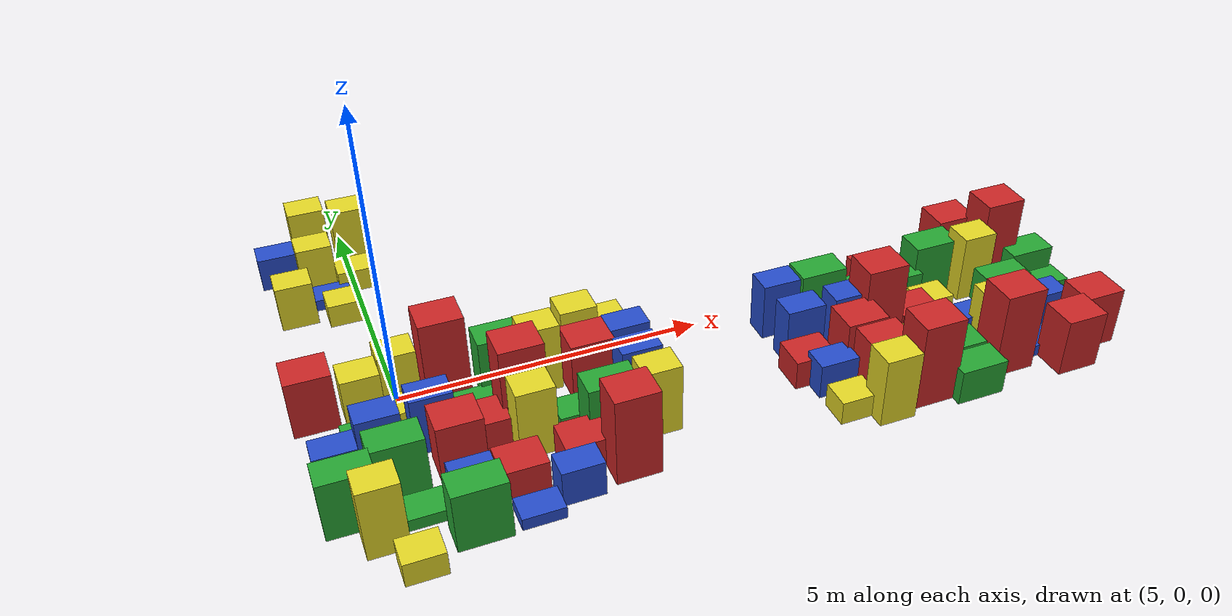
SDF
<sdf version="1.6">
 <world name="default">
  <model name="baggage_A_0.5_clone_0">
   <pose>6.26543 -2.46376 0.249591 0 -0 0</pose>
   <static>1</static>
   <link name="baggage_A_0.5::link">
    <collision name="collision"><geometry><box><size>0.7 0.6 0.5</size></box></geometry></collision>
    <visual name="visual">
     <geometry><box><size>0.7 0.6 0.5</size></box></geometry>
     <material>
      <script><uri>file://media/materials/scripts/gazebo.material</uri><name>Gazebo/Red</name></script>
     </material>
    </visual>
   </link>
  </model>
  <model name="baggage_A_0.5_clone_10">
   <pose>7.2367 -2.3284 0.24962 0 -0 0</pose>
   <static>1</static>
   <link name="baggage_A_0.5::link">
    <collision name="collision"><geometry><box><size>0.7 0.6 0.5</size></box></geometry></collision>
    <visual name="visual">
     <geometry><box><size>0.7 0.6 0.5</size></box></geometry>
     <material>
      <script><uri>file://media/materials/scripts/gazebo.material</uri><name>Gazebo/Red</name></script>
     </material>
    </visual>
   </link>
  </model>
  <model name="baggage_A_0.5_clone_19">
   <pose>6.0358 -1.37193 0.249929 0 -0 0</pose>
   <static>1</static>
   <link name="baggage_A_0.5::link">
    <collision name="collision"><geometry><box><size>0.7 0.6 0.5</size></box></geometry></collision>
    <visual name="visual">
     <geometry><box><size>0.7 0.6 0.5</size></box></geometry>
     <material>
      <script><uri>file://media/materials/scripts/gazebo.material</uri><name>Gazebo/Red</name></script>
     </material>
    </visual>
   </link>
  </model>
  <model name="baggage_A_0.5_clone_33">
   <pose>11.1414 -1.86136 0.249759 0 -0 0</pose>
   <static>1</static>
   <link name="baggage_A_0.5::link">
    <collision name="collision"><geometry><box><size>0.7 0.6 0.5</size></box></geometry></collision>
    <visual name="visual">
     <geometry><box><size>0.7 0.6 0.5</size></box></geometry>
     <material>
      <script><uri>file://media/materials/scripts/gazebo.material</uri><name>Gazebo/Red</name></script>
     </material>
    </visual>
   </link>
  </model>
  <model name="baggage_A_0.5_clone_40">
   <pose>13.3126 -0.130646 0.249646 0 -0 0</pose>
   <static>1</static>
   <link name="baggage_A_0.5::link">
    <collision name="collision"><geometry><box><size>0.7 0.6 0.5</size></box></geometry></collision>
    <visual name="visual">
     <geometry><box><size>0.7 0.6 0.5</size></box></geometry>
     <material>
      <script><uri>file://media/materials/scripts/gazebo.material</uri><name>Gazebo/Red</name></script>
     </material>
    </visual>
   </link>
  </model>
  <model name="baggage_A_0.5_clone_44">
   <pose>13.2972 -1.43388 0.249622 0 -0 0</pose>
   <static>1</static>
   <link name="baggage_A_0.5::link">
    <collision name="collision"><geometry><box><size>0.7 0.6 0.5</size></box></geometry></collision>
    <visual name="visual">
     <geometry><box><size>0.7 0.6 0.5</size></box></geometry>
     <material>
      <script><uri>file://media/materials/scripts/gazebo.material</uri><name>Gazebo/Red</name></script>
     </material>
    </visual>
   </link>
  </model>
  <model name="baggage_A_1.0_clone_3">
   <pose>15.8008 -2.74708 0.499669 0 -0 0</pose>
   <static>1</static>
   <link name="baggage_A_1.0::link">
    <collision name="collision"><geometry><box><size>0.7 0.6 1</size></box></geometry></collision>
    <visual name="visual">
     <geometry><box><size>0.7 0.6 1</size></box></geometry>
     <material>
      <script><uri>file://media/materials/scripts/gazebo.material</uri><name>Gazebo/Red</name></script>
     </material>
    </visual>
   </link>
  </model>
  <model name="baggage_A_1.0_clone_6">
   <pose>5.54857 -1.7938 0.500326 0 -0 0</pose>
   <static>1</static>
   <link name="baggage_A_1.0::link">
    <collision name="collision"><geometry><box><size>0.7 0.6 1</size></box></geometry></collision>
    <visual name="visual">
     <geometry><box><size>0.7 0.6 1</size></box></geometry>
     <material>
      <script><uri>file://media/materials/scripts/gazebo.material</uri><name>Gazebo/Red</name></script>
     </material>
    </visual>
   </link>
  </model>
  <model name="baggage_A_1.0_clone_7">
   <pose>12.0629 -2.55244 0.500417 0 -0 0</pose>
   <static>1</static>
   <link name="baggage_A_1.0::link">
    <collision name="collision"><geometry><box><size>0.7 0.6 1</size></box></geometry></collision>
    <visual name="visual">
     <geometry><box><size>0.7 0.6 1</size></box></geometry>
     <material>
      <script><uri>file://media/materials/scripts/gazebo.material</uri><name>Gazebo/Red</name></script>
     </material>
    </visual>
   </link>
  </model>
  <model name="baggage_A_1.0_clone_9">
   <pose>14.8922 0.079418 0.500357 0 -0 0</pose>
   <static>1</static>
   <link name="baggage_A_1.0::link">
    <collision name="collision"><geometry><box><size>0.7 0.6 1</size></box></geometry></collision>
    <visual name="visual">
     <geometry><box><size>0.7 0.6 1</size></box></geometry>
     <material>
      <script><uri>file://media/materials/scripts/gazebo.material</uri><name>Gazebo/Red</name></script>
     </material>
    </visual>
   </link>
  </model>
  <model name="baggage_A_1.0_clone_13">
   <pose>7.86668 -0.77323 0.500079 0 -0 0</pose>
   <static>1</static>
   <link name="baggage_A_1.0::link">
    <collision name="collision"><geometry><box><size>0.7 0.6 1</size></box></geometry></collision>
    <visual name="visual">
     <geometry><box><size>0.7 0.6 1</size></box></geometry>
     <material>
      <script><uri>file://media/materials/scripts/gazebo.material</uri><name>Gazebo/Red</name></script>
     </material>
    </visual>
   </link>
  </model>
  <model name="baggage_A_1.0_clone_16">
   <pose>11.9799 -1.9132 0.500256 0 -0 0</pose>
   <static>1</static>
   <link name="baggage_A_1.0::link">
    <collision name="collision"><geometry><box><size>0.7 0.6 1</size></box></geometry></collision>
    <visual name="visual">
     <geometry><box><size>0.7 0.6 1</size></box></geometry>
     <material>
      <script><uri>file://media/materials/scripts/gazebo.material</uri><name>Gazebo/Red</name></script>
     </material>
    </visual>
   </link>
  </model>
  <model name="baggage_A_1.0_clone_25">
   <pose>3.75392 -0.022818 0.500376 0 -0 0</pose>
   <static>1</static>
   <link name="baggage_A_1.0::link">
    <collision name="collision"><geometry><box><size>0.7 0.6 1</size></box></geometry></collision>
    <visual name="visual">
     <geometry><box><size>0.7 0.6 1</size></box></geometry>
     <material>
      <script><uri>file://media/materials/scripts/gazebo.material</uri><name>Gazebo/Red</name></script>
     </material>
    </visual>
   </link>
  </model>
  <model name="baggage_A_1.0_clone_35">
   <pose>15.1485 -3.14639 0.500323 0 -0 0</pose>
   <static>1</static>
   <link name="baggage_A_1.0::link">
    <collision name="collision"><geometry><box><size>0.7 0.6 1</size></box></geometry></collision>
    <visual name="visual">
     <geometry><box><size>0.7 0.6 1</size></box></geometry>
     <material>
      <script><uri>file://media/materials/scripts/gazebo.material</uri><name>Gazebo/Red</name></script>
     </material>
    </visual>
   </link>
  </model>
  <model name="baggage_A_1.5_clone_6">
   <pose>14.1781 -2.79768 0.749922 0 -0 0</pose>
   <static>1</static>
   <link name="baggage_A_1.5::link">
    <collision name="collision"><geometry><box><size>0.7 0.6 1.5</size></box></geometry></collision>
    <visual name="visual">
     <geometry><box><size>0.7 0.6 1.5</size></box></geometry>
     <material>
      <script><uri>file://media/materials/scripts/gazebo.material</uri><name>Gazebo/Red</name></script>
     </material>
    </visual>
   </link>
  </model>
  <model name="baggage_A_1.5_clone_9">
   <pose>12.6198 -2.9794 0.7496 0 -0 0</pose>
   <static>1</static>
   <link name="baggage_A_1.5::link">
    <collision name="collision"><geometry><box><size>0.7 0.6 1.5</size></box></geometry></collision>
    <visual name="visual">
     <geometry><box><size>0.7 0.6 1.5</size></box></geometry>
     <material>
      <script><uri>file://media/materials/scripts/gazebo.material</uri><name>Gazebo/Red</name></script>
     </material>
    </visual>
   </link>
  </model>
  <model name="baggage_A_1.5_clone_10">
   <pose>7.83064 -2.76424 0.749633 0 -0 0</pose>
   <static>1</static>
   <link name="baggage_A_1.5::link">
    <collision name="collision"><geometry><box><size>0.7 0.6 1.5</size></box></geometry></collision>
    <visual name="visual">
     <geometry><box><size>0.7 0.6 1.5</size></box></geometry>
     <material>
      <script><uri>file://media/materials/scripts/gazebo.material</uri><name>Gazebo/Red</name></script>
     </material>
    </visual>
   </link>
  </model>
  <model name="baggage_A_1.5_clone_11">
   <pose>5.76849 -0.074128 0.749916 0 -0 0</pose>
   <static>1</static>
   <link name="baggage_A_1.5::link">
    <collision name="collision"><geometry><box><size>0.7 0.6 1.5</size></box></geometry></collision>
    <visual name="visual">
     <geometry><box><size>0.7 0.6 1.5</size></box></geometry>
     <material>
      <script><uri>file://media/materials/scripts/gazebo.material</uri><name>Gazebo/Red</name></script>
     </material>
    </visual>
   </link>
  </model>
  <model name="baggage_A_1.5_clone_13">
   <pose>15.4323 -0.470897 0.749757 0 -0 0</pose>
   <static>1</static>
   <link name="baggage_A_1.5::link">
    <collision name="collision"><geometry><box><size>0.7 0.6 1.5</size></box></geometry></collision>
    <visual name="visual">
     <geometry><box><size>0.7 0.6 1.5</size></box></geometry>
     <material>
      <script><uri>file://media/materials/scripts/gazebo.material</uri><name>Gazebo/Red</name></script>
     </material>
    </visual>
   </link>
  </model>
  <model name="baggage_A_1.5_clone_33">
   <pose>12.5796 -1.41703 0.75003 0 -0 0</pose>
   <static>1</static>
   <link name="baggage_A_1.5::link">
    <collision name="collision"><geometry><box><size>0.7 0.6 1.5</size></box></geometry></collision>
    <visual name="visual">
     <geometry><box><size>0.7 0.6 1.5</size></box></geometry>
     <material>
      <script><uri>file://media/materials/scripts/gazebo.material</uri><name>Gazebo/Red</name></script>
     </material>
    </visual>
   </link>
  </model>
  <model name="baggage_A_1.5_clone_40">
   <pose>6.6746 -1.12238 0.749543 0 -0 0</pose>
   <static>1</static>
   <link name="baggage_A_1.5::link">
    <collision name="collision"><geometry><box><size>0.7 0.6 1.5</size></box></geometry></collision>
    <visual name="visual">
     <geometry><box><size>0.7 0.6 1.5</size></box></geometry>
     <material>
      <script><uri>file://media/materials/scripts/gazebo.material</uri><name>Gazebo/Red</name></script>
     </material>
    </visual>
   </link>
  </model>
  <model name="baggage_B_0.2_clone_4">
   <pose>14.1904 -1.6285 0.099919 0 -0 0</pose>
   <static>1</static>
   <link name="baggage_B_0.2::link">
    <collision name="collision"><geometry><box><size>0.65 0.45 0.2</size></box></geometry></collision>
    <visual name="visual">
     <geometry><box><size>0.65 0.45 0.2</size></box></geometry>
     <material>
      <script><uri>file://media/materials/scripts/gazebo.material</uri><name>Gazebo/Blue</name></script>
     </material>
    </visual>
   </link>
  </model>
  <model name="baggage_B_0.2_clone_5">
   <pose>14.8374 -2.67746 0.100371 0 -0 0</pose>
   <static>1</static>
   <link name="baggage_B_0.2::link">
    <collision name="collision"><geometry><box><size>0.65 0.45 0.2</size></box></geometry></collision>
    <visual name="visual">
     <geometry><box><size>0.65 0.45 0.2</size></box></geometry>
     <material>
      <script><uri>file://media/materials/scripts/gazebo.material</uri><name>Gazebo/Blue</name></script>
     </material>
    </visual>
   </link>
  </model>
  <model name="baggage_B_0.2_clone_12">
   <pose>6.30994 -3.16878 0.099848 0 -0 0</pose>
   <static>1</static>
   <link name="baggage_B_0.2::link">
    <collision name="collision"><geometry><box><size>0.65 0.45 0.2</size></box></geometry></collision>
    <visual name="visual">
     <geometry><box><size>0.65 0.45 0.2</size></box></geometry>
     <material>
      <script><uri>file://media/materials/scripts/gazebo.material</uri><name>Gazebo/Blue</name></script>
     </material>
    </visual>
   </link>
  </model>
  <model name="baggage_B_0.2_clone_21">
   <pose>4.55676 3.02236 0.099808 0 -0 0</pose>
   <static>1</static>
   <link name="baggage_B_0.2::link">
    <collision name="collision"><geometry><box><size>0.65 0.45 0.2</size></box></geometry></collision>
    <visual name="visual">
     <geometry><box><size>0.65 0.45 0.2</size></box></geometry>
     <material>
      <script><uri>file://media/materials/scripts/gazebo.material</uri><name>Gazebo/Blue</name></script>
     </material>
    </visual>
   </link>
  </model>
  <model name="baggage_B_0.6_clone_7">
   <pose>3.8292 3.98197 0.299785 0 -0 0</pose>
   <static>1</static>
   <link name="baggage_B_0.6::link">
    <collision name="collision"><geometry><box><size>0.65 0.45 0.6</size></box></geometry></collision>
    <visual name="visual">
     <geometry><box><size>0.65 0.45 0.6</size></box></geometry>
     <material>
      <script><uri>file://media/materials/scripts/gazebo.material</uri><name>Gazebo/Blue</name></script>
     </material>
    </visual>
   </link>
  </model>
  <model name="baggage_B_0.6_clone_21">
   <pose>6.9676 -2.94811 0.300016 0 -0 0</pose>
   <static>1</static>
   <link name="baggage_B_0.6::link">
    <collision name="collision"><geometry><box><size>0.65 0.45 0.6</size></box></geometry></collision>
    <visual name="visual">
     <geometry><box><size>0.65 0.45 0.6</size></box></geometry>
     <material>
      <script><uri>file://media/materials/scripts/gazebo.material</uri><name>Gazebo/Blue</name></script>
     </material>
    </visual>
   </link>
  </model>
  <model name="baggage_B_0.6_clone_22">
   <pose>15.4346 -2.02199 0.300057 0 -0 0</pose>
   <static>1</static>
   <link name="baggage_B_0.6::link">
    <collision name="collision"><geometry><box><size>0.65 0.45 0.6</size></box></geometry></collision>
    <visual name="visual">
     <geometry><box><size>0.65 0.45 0.6</size></box></geometry>
     <material>
      <script><uri>file://media/materials/scripts/gazebo.material</uri><name>Gazebo/Blue</name></script>
     </material>
    </visual>
   </link>
  </model>
  <model name="baggage_B_0.6_clone_27">
   <pose>11.3573 -2.26727 0.300325 0 -0 0</pose>
   <static>1</static>
   <link name="baggage_B_0.6::link">
    <collision name="collision"><geometry><box><size>0.65 0.45 0.6</size></box></geometry></collision>
    <visual name="visual">
     <geometry><box><size>0.65 0.45 0.6</size></box></geometry>
     <material>
      <script><uri>file://media/materials/scripts/gazebo.material</uri><name>Gazebo/Blue</name></script>
     </material>
    </visual>
   </link>
  </model>
  <model name="baggage_B_0.6_clone_32">
   <pose>5.55622 -2.53883 0.299956 0 -0 0</pose>
   <static>1</static>
   <link name="baggage_B_0.6::link">
    <collision name="collision"><geometry><box><size>0.65 0.45 0.6</size></box></geometry></collision>
    <visual name="visual">
     <geometry><box><size>0.65 0.45 0.6</size></box></geometry>
     <material>
      <script><uri>file://media/materials/scripts/gazebo.material</uri><name>Gazebo/Blue</name></script>
     </material>
    </visual>
   </link>
  </model>
  <model name="baggage_B_0.6_clone_33">
   <pose>3.86494 -1.36281 0.299703 0 -0 0</pose>
   <static>1</static>
   <link name="baggage_B_0.6::link">
    <collision name="collision"><geometry><box><size>0.65 0.45 0.6</size></box></geometry></collision>
    <visual name="visual">
     <geometry><box><size>0.65 0.45 0.6</size></box></geometry>
     <material>
      <script><uri>file://media/materials/scripts/gazebo.material</uri><name>Gazebo/Blue</name></script>
     </material>
    </visual>
   </link>
  </model>
  <model name="baggage_B_0.6_clone_41">
   <pose>14.7447 -0.224482 0.299907 0 -0 0</pose>
   <static>1</static>
   <link name="baggage_B_0.6::link">
    <collision name="collision"><geometry><box><size>0.65 0.45 0.6</size></box></geometry></collision>
    <visual name="visual">
     <geometry><box><size>0.65 0.45 0.6</size></box></geometry>
     <material>
      <script><uri>file://media/materials/scripts/gazebo.material</uri><name>Gazebo/Blue</name></script>
     </material>
    </visual>
   </link>
  </model>
  <model name="baggage_B_1.0_clone_0">
   <pose>11.2512 -1.33279 0.499893 0 -0 0</pose>
   <static>1</static>
   <link name="baggage_B_1.0::link">
    <collision name="collision"><geometry><box><size>0.65 0.45 1</size></box></geometry></collision>
    <visual name="visual">
     <geometry><box><size>0.65 0.45 1</size></box></geometry>
     <material>
      <script><uri>file://media/materials/scripts/gazebo.material</uri><name>Gazebo/Blue</name></script>
     </material>
    </visual>
   </link>
  </model>
  <model name="baggage_B_1.0_clone_15">
   <pose>4.51567 -1.31017 0.499507 0 -0 0</pose>
   <static>1</static>
   <link name="baggage_B_1.0::link">
    <collision name="collision"><geometry><box><size>0.65 0.45 1</size></box></geometry></collision>
    <visual name="visual">
     <geometry><box><size>0.65 0.45 1</size></box></geometry>
     <material>
      <script><uri>file://media/materials/scripts/gazebo.material</uri><name>Gazebo/Blue</name></script>
     </material>
    </visual>
   </link>
  </model>
  <model name="baggage_B_1.0_clone_18">
   <pose>11.2098 -0.562731 0.500107 0 -0 0</pose>
   <static>1</static>
   <link name="baggage_B_1.0::link">
    <collision name="collision"><geometry><box><size>0.65 0.45 1</size></box></geometry></collision>
    <visual name="visual">
     <geometry><box><size>0.65 0.45 1</size></box></geometry>
     <material>
      <script><uri>file://media/materials/scripts/gazebo.material</uri><name>Gazebo/Blue</name></script>
     </material>
    </visual>
   </link>
  </model>
  <model name="baggage_B_1.0_clone_33">
   <pose>5.3183 -1.15227 0.499892 0 -0 0</pose>
   <static>1</static>
   <link name="baggage_B_1.0::link">
    <collision name="collision"><geometry><box><size>0.65 0.45 1</size></box></geometry></collision>
    <visual name="visual">
     <geometry><box><size>0.65 0.45 1</size></box></geometry>
     <material>
      <script><uri>file://media/materials/scripts/gazebo.material</uri><name>Gazebo/Blue</name></script>
     </material>
    </visual>
   </link>
  </model>
  <model name="baggage_B_1.0_clone_34">
   <pose>8.53799 -0.674083 0.500363 0 -0 0</pose>
   <static>1</static>
   <link name="baggage_B_1.0::link">
    <collision name="collision"><geometry><box><size>0.65 0.45 1</size></box></geometry></collision>
    <visual name="visual">
     <geometry><box><size>0.65 0.45 1</size></box></geometry>
     <material>
      <script><uri>file://media/materials/scripts/gazebo.material</uri><name>Gazebo/Blue</name></script>
     </material>
    </visual>
   </link>
  </model>
  <model name="baggage_B_1.0_clone_37">
   <pose>12.0967 -1.30499 0.500296 0 -0 0</pose>
   <static>1</static>
   <link name="baggage_B_1.0::link">
    <collision name="collision"><geometry><box><size>0.65 0.45 1</size></box></geometry></collision>
    <visual name="visual">
     <geometry><box><size>0.65 0.45 1</size></box></geometry>
     <material>
      <script><uri>file://media/materials/scripts/gazebo.material</uri><name>Gazebo/Blue</name></script>
     </material>
    </visual>
   </link>
  </model>
  <model name="baggage_B_1.0_clone_44">
   <pose>8.49553 -1.28646 0.499664 0 -0 0</pose>
   <static>1</static>
   <link name="baggage_B_1.0::link">
    <collision name="collision"><geometry><box><size>0.65 0.45 1</size></box></geometry></collision>
    <visual name="visual">
     <geometry><box><size>0.65 0.45 1</size></box></geometry>
     <material>
      <script><uri>file://media/materials/scripts/gazebo.material</uri><name>Gazebo/Blue</name></script>
     </material>
    </visual>
   </link>
  </model>
  <model name="baggage_C_0.4_clone_4">
   <pose>12.8194 -2.02279 0.20014 0 -0 0</pose>
   <static>1</static>
   <link name="baggage_C_0.4::link">
    <collision name="collision"><geometry><box><size>0.6 0.5 0.4</size></box></geometry></collision>
    <visual name="visual">
     <geometry><box><size>0.6 0.5 0.4</size></box></geometry>
     <material>
      <script><uri>file://media/materials/scripts/gazebo.material</uri><name>Gazebo/Yellow</name></script>
     </material>
    </visual>
   </link>
  </model>
  <model name="baggage_C_0.4_clone_19">
   <pose>12.687 -0.817467 0.199788 0 -0 0</pose>
   <static>1</static>
   <link name="baggage_C_0.4::link">
    <collision name="collision"><geometry><box><size>0.6 0.5 0.4</size></box></geometry></collision>
    <visual name="visual">
     <geometry><box><size>0.6 0.5 0.4</size></box></geometry>
     <material>
      <script><uri>file://media/materials/scripts/gazebo.material</uri><name>Gazebo/Yellow</name></script>
     </material>
    </visual>
   </link>
  </model>
  <model name="baggage_C_0.4_clone_26">
   <pose>11.3432 -2.91135 0.200181 0 -0 0</pose>
   <static>1</static>
   <link name="baggage_C_0.4::link">
    <collision name="collision"><geometry><box><size>0.6 0.5 0.4</size></box></geometry></collision>
    <visual name="visual">
     <geometry><box><size>0.6 0.5 0.4</size></box></geometry>
     <material>
      <script><uri>file://media/materials/scripts/gazebo.material</uri><name>Gazebo/Yellow</name></script>
     </material>
    </visual>
   </link>
  </model>
  <model name="baggage_C_0.4_clone_31">
   <pose>13.8104 -1.1755 0.199826 0 -0 0</pose>
   <static>1</static>
   <link name="baggage_C_0.4::link">
    <collision name="collision"><geometry><box><size>0.6 0.5 0.4</size></box></geometry></collision>
    <visual name="visual">
     <geometry><box><size>0.6 0.5 0.4</size></box></geometry>
     <material>
      <script><uri>file://media/materials/scripts/gazebo.material</uri><name>Gazebo/Yellow</name></script>
     </material>
    </visual>
   </link>
  </model>
  <model name="baggage_C_0.4_clone_34">
   <pose>4.59136 -3.50974 0.200428 0 -0 0</pose>
   <static>1</static>
   <link name="baggage_C_0.4::link">
    <collision name="collision"><geometry><box><size>0.6 0.5 0.4</size></box></geometry></collision>
    <visual name="visual">
     <geometry><box><size>0.6 0.5 0.4</size></box></geometry>
     <material>
      <script><uri>file://media/materials/scripts/gazebo.material</uri><name>Gazebo/Yellow</name></script>
     </material>
    </visual>
   </link>
  </model>
  <model name="baggage_C_0.4_clone_43">
   <pose>5.15866 -0.59211 0.199723 0 -0 0</pose>
   <static>1</static>
   <link name="baggage_C_0.4::link">
    <collision name="collision"><geometry><box><size>0.6 0.5 0.4</size></box></geometry></collision>
    <visual name="visual">
     <geometry><box><size>0.6 0.5 0.4</size></box></geometry>
     <material>
      <script><uri>file://media/materials/scripts/gazebo.material</uri><name>Gazebo/Yellow</name></script>
     </material>
    </visual>
   </link>
  </model>
  <model name="baggage_C_0.4_clone_44">
   <pose>5.02547 3.40263 0.199954 0 -0 0</pose>
   <static>1</static>
   <link name="baggage_C_0.4::link">
    <collision name="collision"><geometry><box><size>0.6 0.5 0.4</size></box></geometry></collision>
    <visual name="visual">
     <geometry><box><size>0.6 0.5 0.4</size></box></geometry>
     <material>
      <script><uri>file://media/materials/scripts/gazebo.material</uri><name>Gazebo/Yellow</name></script>
     </material>
    </visual>
   </link>
  </model>
  <model name="baggage_C_0.4_clone_46">
   <pose>4.6947 2.49389 0.200389 0 -0 0</pose>
   <static>1</static>
   <link name="baggage_C_0.4::link">
    <collision name="collision"><geometry><box><size>0.6 0.5 0.4</size></box></geometry></collision>
    <visual name="visual">
     <geometry><box><size>0.6 0.5 0.4</size></box></geometry>
     <material>
      <script><uri>file://media/materials/scripts/gazebo.material</uri><name>Gazebo/Yellow</name></script>
     </material>
    </visual>
   </link>
  </model>
  <model name="baggage_C_0.8_clone_3">
   <pose>14.5319 -1.9921 0.399594 0 -0 0</pose>
   <static>1</static>
   <link name="baggage_C_0.8::link">
    <collision name="collision"><geometry><box><size>0.6 0.5 0.8</size></box></geometry></collision>
    <visual name="visual">
     <geometry><box><size>0.6 0.5 0.8</size></box></geometry>
     <material>
      <script><uri>file://media/materials/scripts/gazebo.material</uri><name>Gazebo/Yellow</name></script>
     </material>
    </visual>
   </link>
  </model>
  <model name="baggage_C_0.8_clone_6">
   <pose>4.43262 3.71279 0.400264 0 -0 0</pose>
   <static>1</static>
   <link name="baggage_C_0.8::link">
    <collision name="collision"><geometry><box><size>0.6 0.5 0.8</size></box></geometry></collision>
    <visual name="visual">
     <geometry><box><size>0.6 0.5 0.8</size></box></geometry>
     <material>
      <script><uri>file://media/materials/scripts/gazebo.material</uri><name>Gazebo/Yellow</name></script>
     </material>
    </visual>
   </link>
  </model>
  <model name="baggage_C_0.8_clone_11">
   <pose>5.09871 0.27381 0.399961 0 -0 0</pose>
   <static>1</static>
   <link name="baggage_C_0.8::link">
    <collision name="collision"><geometry><box><size>0.6 0.5 0.8</size></box></geometry></collision>
    <visual name="visual">
     <geometry><box><size>0.6 0.5 0.8</size></box></geometry>
     <material>
      <script><uri>file://media/materials/scripts/gazebo.material</uri><name>Gazebo/Yellow</name></script>
     </material>
    </visual>
   </link>
  </model>
  <model name="baggage_C_0.8_clone_13">
   <pose>8.38068 -0.123605 0.399764 0 -0 0</pose>
   <static>1</static>
   <link name="baggage_C_0.8::link">
    <collision name="collision"><geometry><box><size>0.6 0.5 0.8</size></box></geometry></collision>
    <visual name="visual">
     <geometry><box><size>0.6 0.5 0.8</size></box></geometry>
     <material>
      <script><uri>file://media/materials/scripts/gazebo.material</uri><name>Gazebo/Yellow</name></script>
     </material>
    </visual>
   </link>
  </model>
  <model name="baggage_C_0.8_clone_47">
   <pose>4.48116 -0.075645 0.399805 0 -0 0</pose>
   <static>1</static>
   <link name="baggage_C_0.8::link">
    <collision name="collision"><geometry><box><size>0.6 0.5 0.8</size></box></geometry></collision>
    <visual name="visual">
     <geometry><box><size>0.6 0.5 0.8</size></box></geometry>
     <material>
      <script><uri>file://media/materials/scripts/gazebo.material</uri><name>Gazebo/Yellow</name></script>
     </material>
    </visual>
   </link>
  </model>
  <model name="baggage_C_0.8_clone_48">
   <pose>3.94324 2.70346 0.39978 0 -0 0</pose>
   <static>1</static>
   <link name="baggage_C_0.8::link">
    <collision name="collision"><geometry><box><size>0.6 0.5 0.8</size></box></geometry></collision>
    <visual name="visual">
     <geometry><box><size>0.6 0.5 0.8</size></box></geometry>
     <material>
      <script><uri>file://media/materials/scripts/gazebo.material</uri><name>Gazebo/Yellow</name></script>
     </material>
    </visual>
   </link>
  </model>
  <model name="baggage_C_1.2_clone_0">
   <pose>7.17335 -0.459526 0.599666 0 -0 0</pose>
   <static>1</static>
   <link name="baggage_C_1.2::link">
    <collision name="collision"><geometry><box><size>0.6 0.5 1.2</size></box></geometry></collision>
    <visual name="visual">
     <geometry><box><size>0.6 0.5 1.2</size></box></geometry>
     <material>
      <script><uri>file://media/materials/scripts/gazebo.material</uri><name>Gazebo/Yellow</name></script>
     </material>
    </visual>
   </link>
  </model>
  <model name="baggage_C_1.2_clone_6">
   <pose>11.8654 -3.16881 0.600203 0 -0 0</pose>
   <static>1</static>
   <link name="baggage_C_1.2::link">
    <collision name="collision"><geometry><box><size>0.6 0.5 1.2</size></box></geometry></collision>
    <visual name="visual">
     <geometry><box><size>0.6 0.5 1.2</size></box></geometry>
     <material>
      <script><uri>file://media/materials/scripts/gazebo.material</uri><name>Gazebo/Yellow</name></script>
     </material>
    </visual>
   </link>
  </model>
  <model name="baggage_C_1.2_clone_16">
   <pose>5.13561 4.05713 0.600318 0 -0 0</pose>
   <static>1</static>
   <link name="baggage_C_1.2::link">
    <collision name="collision"><geometry><box><size>0.6 0.5 1.2</size></box></geometry></collision>
    <visual name="visual">
     <geometry><box><size>0.6 0.5 1.2</size></box></geometry>
     <material>
      <script><uri>file://media/materials/scripts/gazebo.material</uri><name>Gazebo/Yellow</name></script>
     </material>
    </visual>
   </link>
  </model>
  <model name="baggage_C_1.2_clone_19">
   <pose>6.67042 -1.80778 0.600356 0 -0 0</pose>
   <static>1</static>
   <link name="baggage_C_1.2::link">
    <collision name="collision"><geometry><box><size>0.6 0.5 1.2</size></box></geometry></collision>
    <visual name="visual">
     <geometry><box><size>0.6 0.5 1.2</size></box></geometry>
     <material>
      <script><uri>file://media/materials/scripts/gazebo.material</uri><name>Gazebo/Yellow</name></script>
     </material>
    </visual>
   </link>
  </model>
  <model name="baggage_C_1.2_clone_20">
   <pose>4.22856 -2.87264 0.60044 0 -0 0</pose>
   <static>1</static>
   <link name="baggage_C_1.2::link">
    <collision name="collision"><geometry><box><size>0.6 0.5 1.2</size></box></geometry></collision>
    <visual name="visual">
     <geometry><box><size>0.6 0.5 1.2</size></box></geometry>
     <material>
      <script><uri>file://media/materials/scripts/gazebo.material</uri><name>Gazebo/Yellow</name></script>
     </material>
    </visual>
   </link>
  </model>
  <model name="baggage_C_1.2_clone_22">
   <pose>8.5045 -2.07752 0.599613 0 -0 0</pose>
   <static>1</static>
   <link name="baggage_C_1.2::link">
    <collision name="collision"><geometry><box><size>0.6 0.5 1.2</size></box></geometry></collision>
    <visual name="visual">
     <geometry><box><size>0.6 0.5 1.2</size></box></geometry>
     <material>
      <script><uri>file://media/materials/scripts/gazebo.material</uri><name>Gazebo/Yellow</name></script>
     </material>
    </visual>
   </link>
  </model>
  <model name="baggage_C_1.2_clone_31">
   <pose>4.45383 4.25964 0.600219 0 -0 0</pose>
   <static>1</static>
   <link name="baggage_C_1.2::link">
    <collision name="collision"><geometry><box><size>0.6 0.5 1.2</size></box></geometry></collision>
    <visual name="visual">
     <geometry><box><size>0.6 0.5 1.2</size></box></geometry>
     <material>
      <script><uri>file://media/materials/scripts/gazebo.material</uri><name>Gazebo/Yellow</name></script>
     </material>
    </visual>
   </link>
  </model>
  <model name="baggage_C_1.2_clone_37">
   <pose>14.7483 -0.848958 0.599608 0 -0 0</pose>
   <static>1</static>
   <link name="baggage_C_1.2::link">
    <collision name="collision"><geometry><box><size>0.6 0.5 1.2</size></box></geometry></collision>
    <visual name="visual">
     <geometry><box><size>0.6 0.5 1.2</size></box></geometry>
     <material>
      <script><uri>file://media/materials/scripts/gazebo.material</uri><name>Gazebo/Yellow</name></script>
     </material>
    </visual>
   </link>
  </model>
  <model name="baggage_C_1.2_clone_45">
   <pose>7.86157 -0.215089 0.59971 0 -0 0</pose>
   <static>1</static>
   <link name="baggage_C_1.2::link">
    <collision name="collision"><geometry><box><size>0.6 0.5 1.2</size></box></geometry></collision>
    <visual name="visual">
     <geometry><box><size>0.6 0.5 1.2</size></box></geometry>
     <material>
      <script><uri>file://media/materials/scripts/gazebo.material</uri><name>Gazebo/Yellow</name></script>
     </material>
    </visual>
   </link>
  </model>
  <model name="baggage_D_0.2_clone_17">
   <pose>7.52064 -1.39829 0.10043 0 -0 0</pose>
   <static>1</static>
   <link name="baggage_D_0.2::link">
    <collision name="collision"><geometry><box><size>0.8 0.5 0.2</size></box></geometry></collision>
    <visual name="visual">
     <geometry><box><size>0.8 0.5 0.2</size></box></geometry>
     <material>
      <script><uri>file://media/materials/scripts/gazebo.material</uri><name>Gazebo/Green</name></script>
     </material>
    </visual>
   </link>
  </model>
  <model name="baggage_D_0.2_clone_21">
   <pose>4.78388 -2.56624 0.099559 0 -0 0</pose>
   <static>1</static>
   <link name="baggage_D_0.2::link">
    <collision name="collision"><geometry><box><size>0.8 0.5 0.2</size></box></geometry></collision>
    <visual name="visual">
     <geometry><box><size>0.8 0.5 0.2</size></box></geometry>
     <material>
      <script><uri>file://media/materials/scripts/gazebo.material</uri><name>Gazebo/Green</name></script>
     </material>
    </visual>
   </link>
  </model>
  <model name="baggage_D_0.2_clone_22">
   <pose>4.44588 -0.761704 0.100003 0 -0 0</pose>
   <static>1</static>
   <link name="baggage_D_0.2::link">
    <collision name="collision"><geometry><box><size>0.8 0.5 0.2</size></box></geometry></collision>
    <visual name="visual">
     <geometry><box><size>0.8 0.5 0.2</size></box></geometry>
     <material>
      <script><uri>file://media/materials/scripts/gazebo.material</uri><name>Gazebo/Green</name></script>
     </material>
    </visual>
   </link>
  </model>
  <model name="baggage_D_0.2_clone_27">
   <pose>13.4598 -2.05495 0.100484 0 -0 0</pose>
   <static>1</static>
   <link name="baggage_D_0.2::link">
    <collision name="collision"><geometry><box><size>0.8 0.5 0.2</size></box></geometry></collision>
    <visual name="visual">
     <geometry><box><size>0.8 0.5 0.2</size></box></geometry>
     <material>
      <script><uri>file://media/materials/scripts/gazebo.material</uri><name>Gazebo/Green</name></script>
     </material>
    </visual>
   </link>
  </model>
  <model name="baggage_D_0.2_clone_30">
   <pose>6.01113 -0.668914 0.100323 0 -0 0</pose>
   <static>1</static>
   <link name="baggage_D_0.2::link">
    <collision name="collision"><geometry><box><size>0.8 0.5 0.2</size></box></geometry></collision>
    <visual name="visual">
     <geometry><box><size>0.8 0.5 0.2</size></box></geometry>
     <material>
      <script><uri>file://media/materials/scripts/gazebo.material</uri><name>Gazebo/Green</name></script>
     </material>
    </visual>
   </link>
  </model>
  <model name="baggage_D_0.2_clone_36">
   <pose>12.6639 -0.244234 0.0996 0 -0 0</pose>
   <static>1</static>
   <link name="baggage_D_0.2::link">
    <collision name="collision"><geometry><box><size>0.8 0.5 0.2</size></box></geometry></collision>
    <visual name="visual">
     <geometry><box><size>0.8 0.5 0.2</size></box></geometry>
     <material>
      <script><uri>file://media/materials/scripts/gazebo.material</uri><name>Gazebo/Green</name></script>
     </material>
    </visual>
   </link>
  </model>
  <model name="baggage_D_0.2_clone_37">
   <pose>15.9971 -1.28407 0.099552 0 -0 0</pose>
   <static>1</static>
   <link name="baggage_D_0.2::link">
    <collision name="collision"><geometry><box><size>0.8 0.5 0.2</size></box></geometry></collision>
    <visual name="visual">
     <geometry><box><size>0.8 0.5 0.2</size></box></geometry>
     <material>
      <script><uri>file://media/materials/scripts/gazebo.material</uri><name>Gazebo/Green</name></script>
     </material>
    </visual>
   </link>
  </model>
  <model name="baggage_D_0.6_clone_15">
   <pose>15.9252 -0.833163 0.300212 0 -0 0</pose>
   <static>1</static>
   <link name="baggage_D_0.6::link">
    <collision name="collision"><geometry><box><size>0.8 0.5 0.6</size></box></geometry></collision>
    <visual name="visual">
     <geometry><box><size>0.8 0.5 0.6</size></box></geometry>
     <material>
      <script><uri>file://media/materials/scripts/gazebo.material</uri><name>Gazebo/Green</name></script>
     </material>
    </visual>
   </link>
  </model>
  <model name="baggage_D_0.6_clone_17">
   <pose>13.3317 -3.19474 0.300314 0 -0 0</pose>
   <static>1</static>
   <link name="baggage_D_0.6::link">
    <collision name="collision"><geometry><box><size>0.8 0.5 0.6</size></box></geometry></collision>
    <visual name="visual">
     <geometry><box><size>0.8 0.5 0.6</size></box></geometry>
     <material>
      <script><uri>file://media/materials/scripts/gazebo.material</uri><name>Gazebo/Green</name></script>
     </material>
    </visual>
   </link>
  </model>
  <model name="baggage_D_0.6_clone_38">
   <pose>13.3282 -2.64765 0.30021 0 -0 0</pose>
   <static>1</static>
   <link name="baggage_D_0.6::link">
    <collision name="collision"><geometry><box><size>0.8 0.5 0.6</size></box></geometry></collision>
    <visual name="visual">
     <geometry><box><size>0.8 0.5 0.6</size></box></geometry>
     <material>
      <script><uri>file://media/materials/scripts/gazebo.material</uri><name>Gazebo/Green</name></script>
     </material>
    </visual>
   </link>
  </model>
  <model name="baggage_D_0.6_clone_40">
   <pose>13.4 -0.667796 0.300278 0 -0 0</pose>
   <static>1</static>
   <link name="baggage_D_0.6::link">
    <collision name="collision"><geometry><box><size>0.8 0.5 0.6</size></box></geometry></collision>
    <visual name="visual">
     <geometry><box><size>0.8 0.5 0.6</size></box></geometry>
     <material>
      <script><uri>file://media/materials/scripts/gazebo.material</uri><name>Gazebo/Green</name></script>
     </material>
    </visual>
   </link>
  </model>
  <model name="baggage_D_0.6_clone_45">
   <pose>15.094 -1.36219 0.300219 0 -0 0</pose>
   <static>1</static>
   <link name="baggage_D_0.6::link">
    <collision name="collision"><geometry><box><size>0.8 0.5 0.6</size></box></geometry></collision>
    <visual name="visual">
     <geometry><box><size>0.8 0.5 0.6</size></box></geometry>
     <material>
      <script><uri>file://media/materials/scripts/gazebo.material</uri><name>Gazebo/Green</name></script>
     </material>
    </visual>
   </link>
  </model>
  <model name="baggage_D_1.0_clone_1">
   <pose>14.1351 -0.534316 0.499876 0 -0 0</pose>
   <static>1</static>
   <link name="baggage_D_1.0::link">
    <collision name="collision"><geometry><box><size>0.8 0.5 1</size></box></geometry></collision>
    <visual name="visual">
     <geometry><box><size>0.8 0.5 1</size></box></geometry>
     <material>
      <script><uri>file://media/materials/scripts/gazebo.material</uri><name>Gazebo/Green</name></script>
     </material>
    </visual>
   </link>
  </model>
  <model name="baggage_D_1.0_clone_12">
   <pose>5.47223 -3.19192 0.500226 0 -0 0</pose>
   <static>1</static>
   <link name="baggage_D_1.0::link">
    <collision name="collision"><geometry><box><size>0.8 0.5 1</size></box></geometry></collision>
    <visual name="visual">
     <geometry><box><size>0.8 0.5 1</size></box></geometry>
     <material>
      <script><uri>file://media/materials/scripts/gazebo.material</uri><name>Gazebo/Green</name></script>
     </material>
    </visual>
   </link>
  </model>
  <model name="baggage_D_1.0_clone_15">
   <pose>3.8821 -2.31525 0.500235 0 -0 0</pose>
   <static>1</static>
   <link name="baggage_D_1.0::link">
    <collision name="collision"><geometry><box><size>0.8 0.5 1</size></box></geometry></collision>
    <visual name="visual">
     <geometry><box><size>0.8 0.5 1</size></box></geometry>
     <material>
      <script><uri>file://media/materials/scripts/gazebo.material</uri><name>Gazebo/Green</name></script>
     </material>
    </visual>
   </link>
  </model>
  <model name="baggage_D_1.0_clone_17">
   <pose>11.9765 -0.542556 0.499951 0 -0 0</pose>
   <static>1</static>
   <link name="baggage_D_1.0::link">
    <collision name="collision"><geometry><box><size>0.8 0.5 1</size></box></geometry></collision>
    <visual name="visual">
     <geometry><box><size>0.8 0.5 1</size></box></geometry>
     <material>
      <script><uri>file://media/materials/scripts/gazebo.material</uri><name>Gazebo/Green</name></script>
     </material>
    </visual>
   </link>
  </model>
  <model name="baggage_D_1.0_clone_20">
   <pose>7.81492 -1.89594 0.499505 0 -0 0</pose>
   <static>1</static>
   <link name="baggage_D_1.0::link">
    <collision name="collision"><geometry><box><size>0.8 0.5 1</size></box></geometry></collision>
    <visual name="visual">
     <geometry><box><size>0.8 0.5 1</size></box></geometry>
     <material>
      <script><uri>file://media/materials/scripts/gazebo.material</uri><name>Gazebo/Green</name></script>
     </material>
    </visual>
   </link>
  </model>
  <model name="baggage_D_1.0_clone_30">
   <pose>6.64584 -0.212791 0.500158 0 -0 0</pose>
   <static>1</static>
   <link name="baggage_D_1.0::link">
    <collision name="collision"><geometry><box><size>0.8 0.5 1</size></box></geometry></collision>
    <visual name="visual">
     <geometry><box><size>0.8 0.5 1</size></box></geometry>
     <material>
      <script><uri>file://media/materials/scripts/gazebo.material</uri><name>Gazebo/Green</name></script>
     </material>
    </visual>
   </link>
  </model>
  <model name="baggage_D_1.0_clone_47">
   <pose>4.64687 -1.94304 0.500013 0 -0 0</pose>
   <static>1</static>
   <link name="baggage_D_1.0::link">
    <collision name="collision"><geometry><box><size>0.8 0.5 1</size></box></geometry></collision>
    <visual name="visual">
     <geometry><box><size>0.8 0.5 1</size></box></geometry>
     <material>
      <script><uri>file://media/materials/scripts/gazebo.material</uri><name>Gazebo/Green</name></script>
     </material>
    </visual>
   </link>
  </model>
 </world>
</sdf>
